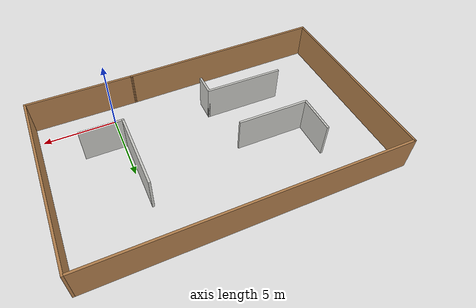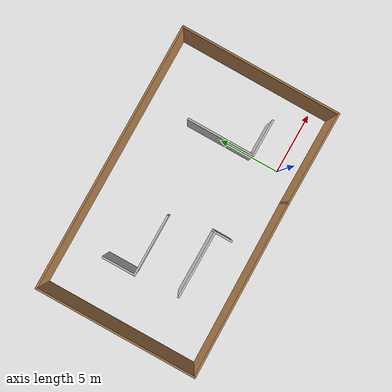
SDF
<?xml version='1.0'?>
<sdf version='1.7'>
  <model name='Maze_room'>
    <pose>-5.44065 4.82935 0 0 -0 0</pose>
    <link name='Wall_0'>
      <collision name='Wall_0_Collision'>
        <geometry>
          <box>
            <size>7.5 0.15 2.5</size>
          </box>
        </geometry>
        <pose>0 0 1.25 0 -0 0</pose>
      </collision>
      <visual name='Wall_0_Visual'>
        <pose>0 0 1.25 0 -0 0</pose>
        <geometry>
          <box>
            <size>7.5 0.15 2.5</size>
          </box>
        </geometry>
        <material>
          <script>
            <uri>file://media/materials/scripts/gazebo.material</uri>
            <name>Gazebo/Wood</name>
          </script>
          <ambient>1 1 1 1</ambient>
        </material>
        <meta>
          <layer>0</layer>
        </meta>
      </visual>
      <pose>7.12565 -6.29935 0 0 -0 0</pose>
    </link>
    <link name='Wall_1'>
      <collision name='Wall_1_Collision'>
        <geometry>
          <box>
            <size>13 0.15 2.5</size>
          </box>
        </geometry>
        <pose>0 0 1.25 0 -0 0</pose>
      </collision>
      <visual name='Wall_1_Visual'>
        <pose>0 0 1.25 0 -0 0</pose>
        <geometry>
          <box>
            <size>13 0.15 2.5</size>
          </box>
        </geometry>
        <material>
          <script>
            <uri>file://media/materials/scripts/gazebo.material</uri>
            <name>Gazebo/Wood</name>
          </script>
          <ambient>1 1 1 1</ambient>
        </material>
        <meta>
          <layer>0</layer>
        </meta>
      </visual>
      <pose>10.8007 0.125652 0 0 -0 1.5708</pose>
    </link>
    <link name='Wall_10'>
      <collision name='Wall_10_Collision'>
        <geometry>
          <box>
            <size>3 0.15 2.5</size>
          </box>
        </geometry>
        <pose>0 0 1.25 0 -0 0</pose>
      </collision>
      <visual name='Wall_10_Visual'>
        <pose>0 0 1.25 0 -0 0</pose>
        <geometry>
          <box>
            <size>3 0.15 2.5</size>
          </box>
        </geometry>
        <material>
          <script>
            <uri>file://media/materials/scripts/gazebo.material</uri>
            <name>Gazebo/CeilingTiled</name>
          </script>
          <ambient>1 1 1 1</ambient>
        </material>
        <meta>
          <layer>0</layer>
        </meta>
      </visual>
      <pose>6.61363 -2.39644 0 0 -0 0</pose>
    </link>
    <link name='Wall_12'>
      <collision name='Wall_12_Collision'>
        <geometry>
          <box>
            <size>5.5 0.15 2.5</size>
          </box>
        </geometry>
        <pose>0 0 1.25 0 -0 0</pose>
      </collision>
      <visual name='Wall_12_Visual'>
        <pose>0 0 1.25 0 -0 0</pose>
        <geometry>
          <box>
            <size>5.5 0.15 2.5</size>
          </box>
        </geometry>
        <material>
          <script>
            <uri>file://media/materials/scripts/gazebo.material</uri>
            <name>Gazebo/CeilingTiled</name>
          </script>
          <ambient>1 1 1 1</ambient>
        </material>
        <meta>
          <layer>0</layer>
        </meta>
      </visual>
      <pose>-3.64208 -2.70701 0 0 -0 0</pose>
    </link>
    <link name='Wall_13'>
      <collision name='Wall_13_Collision'>
        <geometry>
          <box>
            <size>1.5 0.15 2.5</size>
          </box>
        </geometry>
        <pose>0 0 1.25 0 -0 0</pose>
      </collision>
      <visual name='Wall_13_Visual'>
        <pose>0 0 1.25 0 -0 0</pose>
        <geometry>
          <box>
            <size>1.5 0.15 2.5</size>
          </box>
        </geometry>
        <material>
          <script>
            <uri>file://media/materials/scripts/gazebo.material</uri>
            <name>Gazebo/CeilingTiled</name>
          </script>
          <ambient>1 1 1 1</ambient>
        </material>
        <meta>
          <layer>0</layer>
        </meta>
      </visual>
      <pose>-0.967082 -3.38201 0 0 -0 -1.5708</pose>
    </link>
    <link name='Wall_2'>
      <collision name='Wall_2_Collision'>
        <geometry>
          <box>
            <size>21.75 0.15 2.5</size>
          </box>
        </geometry>
        <pose>0 0 1.25 0 -0 0</pose>
      </collision>
      <visual name='Wall_2_Visual'>
        <pose>0 0 1.25 0 -0 0</pose>
        <geometry>
          <box>
            <size>21.75 0.15 2.5</size>
          </box>
        </geometry>
        <material>
          <script>
            <uri>file://media/materials/scripts/gazebo.material</uri>
            <name>Gazebo/Wood</name>
          </script>
          <ambient>1 1 1 1</ambient>
        </material>
        <meta>
          <layer>0</layer>
        </meta>
      </visual>
      <pose>0.000651 6.55065 0 0 -0 3.14159</pose>
    </link>
    <link name='Wall_3'>
      <collision name='Wall_3_Collision'>
        <geometry>
          <box>
            <size>13.25 0.15 2.5</size>
          </box>
        </geometry>
        <pose>0 0 1.25 0 -0 0</pose>
      </collision>
      <visual name='Wall_3_Visual'>
        <pose>0 0 1.25 0 -0 0</pose>
        <geometry>
          <box>
            <size>13.25 0.15 2.5</size>
          </box>
        </geometry>
        <material>
          <script>
            <uri>file://media/materials/scripts/gazebo.material</uri>
            <name>Gazebo/Wood</name>
          </script>
          <ambient>1 1 1 1</ambient>
        </material>
        <meta>
          <layer>0</layer>
        </meta>
      </visual>
      <pose>-10.7993 0.000652 0 0 -0 -1.5708</pose>
    </link>
    <link name='Wall_4'>
      <collision name='Wall_4_Collision'>
        <geometry>
          <box>
            <size>14.4022 0.15 2.5</size>
          </box>
        </geometry>
        <pose>0 0 1.25 0 -0 0</pose>
      </collision>
      <visual name='Wall_4_Visual'>
        <pose>0 0 1.25 0 -0 0</pose>
        <geometry>
          <box>
            <size>14.4022 0.15 2.5</size>
          </box>
        </geometry>
        <material>
          <script>
            <uri>file://media/materials/scripts/gazebo.material</uri>
            <name>Gazebo/Wood</name>
          </script>
          <ambient>1 1 1 1</ambient>
        </material>
        <meta>
          <layer>0</layer>
        </meta>
      </visual>
      <pose>-3.67435 -6.42435 0 0 -0 0.017542</pose>
    </link>
    <link name='Wall_6'>
      <collision name='Wall_6_Collision'>
        <geometry>
          <box>
            <size>2.75 0.15 2.5</size>
          </box>
        </geometry>
        <pose>0 0 1.25 0 -0 0</pose>
      </collision>
      <visual name='Wall_6_Visual'>
        <pose>0 0 1.25 0 -0 0</pose>
        <geometry>
          <box>
            <size>2.75 0.15 2.5</size>
          </box>
        </geometry>
        <material>
          <script>
            <uri>file://media/materials/scripts/gazebo.material</uri>
            <name>Gazebo/CeilingTiled</name>
          </script>
          <ambient>1 1 1 1</ambient>
        </material>
        <meta>
          <layer>0</layer>
        </meta>
      </visual>
      <pose>-6.50167 2.14578 0 0 -0 -1.5708</pose>
    </link>
    <link name='Wall_7'>
      <collision name='Wall_7_Collision'>
        <geometry>
          <box>
            <size>5 0.15 2.5</size>
          </box>
        </geometry>
        <pose>0 0 1.25 0 -0 0</pose>
      </collision>
      <visual name='Wall_7_Visual'>
        <pose>0 0 1.25 0 -0 0</pose>
        <geometry>
          <box>
            <size>5 0.15 2.5</size>
          </box>
        </geometry>
        <material>
          <script>
            <uri>file://media/materials/scripts/gazebo.material</uri>
            <name>Gazebo/CeilingTiled</name>
          </script>
          <ambient>1 1 1 1</ambient>
        </material>
        <meta>
          <layer>0</layer>
        </meta>
      </visual>
      <pose>-4.07667 0.845781 0 0 -0 0</pose>
    </link>
    <link name='Wall_9'>
      <collision name='Wall_9_Collision'>
        <geometry>
          <box>
            <size>5.5 0.15 2.5</size>
          </box>
        </geometry>
        <pose>0 0 1.25 0 -0 0</pose>
      </collision>
      <visual name='Wall_9_Visual'>
        <pose>0 0 1.25 0 -0 0</pose>
        <geometry>
          <box>
            <size>5.5 0.15 2.5</size>
          </box>
        </geometry>
        <material>
          <script>
            <uri>file://media/materials/scripts/gazebo.material</uri>
            <name>Gazebo/CeilingTiled</name>
          </script>
          <ambient>1 1 1 1</ambient>
        </material>
        <meta>
          <layer>0</layer>
        </meta>
      </visual>
      <pose>5.18863 0.278558 0 0 -0 -1.5708</pose>
    </link>
    <static>1</static>
  </model>
</sdf>
